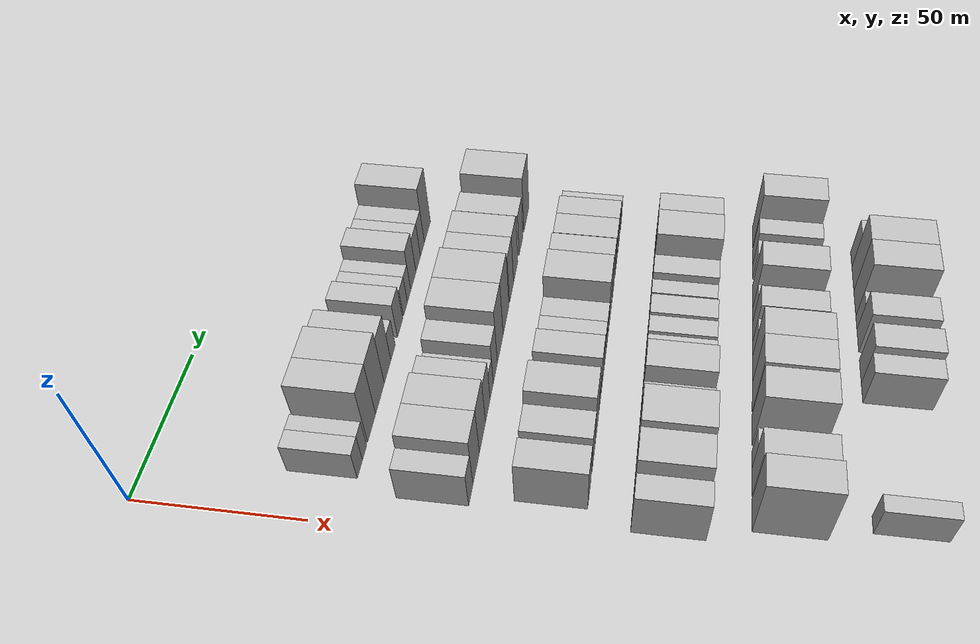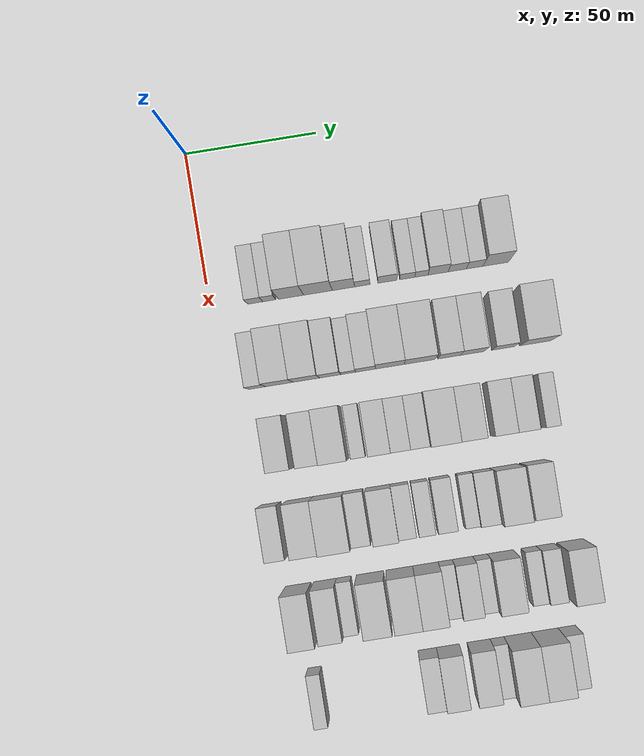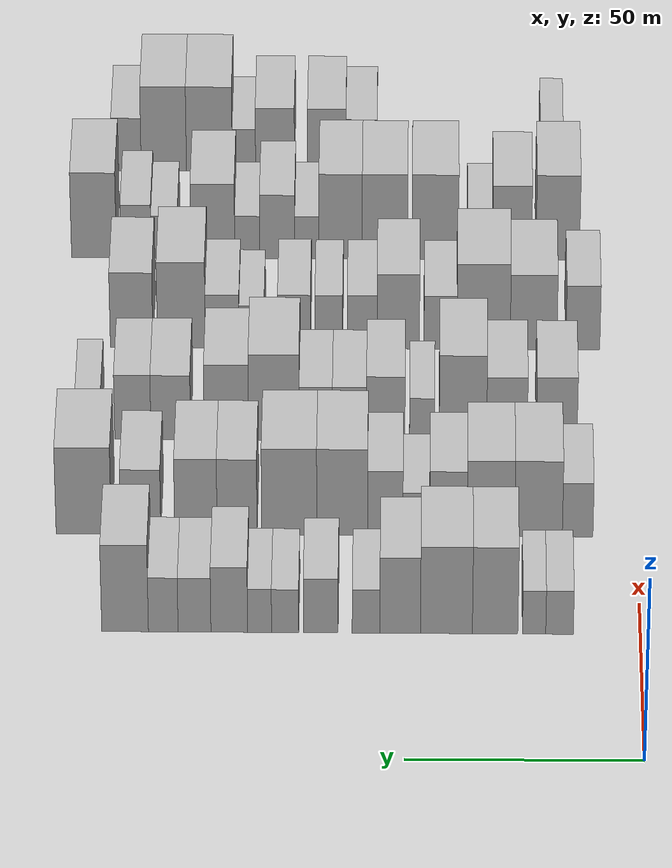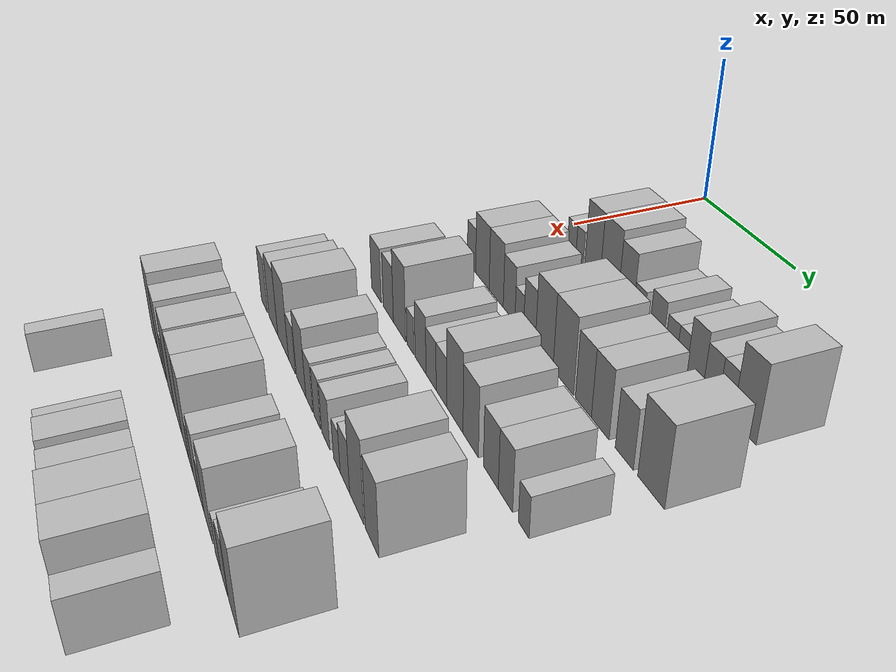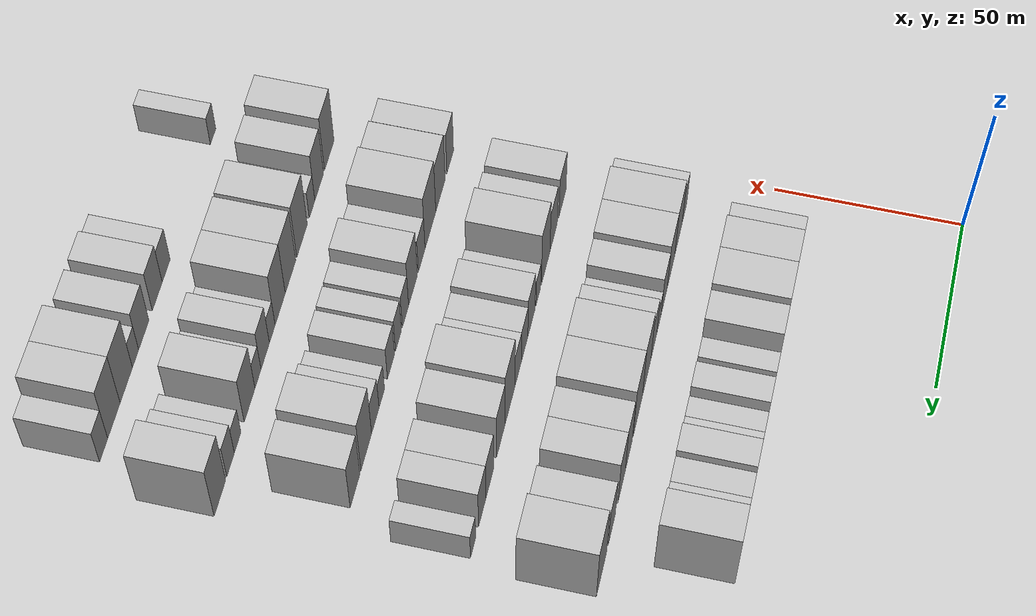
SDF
<sdf version="1.6">
 <world name="default">
  <model name="building_57">
   <static>1</static>
   <pose>50.0000 17.2254 0 0.000000 0.000000 0.000000</pose>
   <link name="link">
    <pose>0 0 6.00 0 0 0</pose>
    <collision name="collision"><geometry><box><size>20.0000 5.8542 12.0000</size></box></geometry></collision>
    <visual name="visual">
     <cast_shadows>0</cast_shadows>
     <geometry><box><size>20.0000 5.8542 12.0000</size></box></geometry>
     <material>
      <script>
       <uri>model://HANNAS_wall/materials/scripts</uri>
       <uri>model://HANNAS_wall/materials/textures</uri>
       <name>vrc/HANNAS_wall</name>
      </script>
     </material>
    </visual>
   </link>
  </model>
  <model name="building_58">
   <static>1</static>
   <pose>50.0000 22.6126 0 0.000000 0.000000 0.000000</pose>
   <link name="link">
    <pose>0 0 6.00 0 0 0</pose>
    <collision name="collision"><geometry><box><size>20.0000 4.9204 12.0000</size></box></geometry></collision>
    <visual name="visual">
     <cast_shadows>0</cast_shadows>
     <geometry><box><size>20.0000 4.9204 12.0000</size></box></geometry>
     <material>
      <script>
       <uri>model://HANNAS_wall/materials/scripts</uri>
       <uri>model://HANNAS_wall/materials/textures</uri>
       <name>vrc/HANNAS_wall</name>
      </script>
     </material>
    </visual>
   </link>
  </model>
  <model name="building_59">
   <static>1</static>
   <pose>50.0000 30.8937 0 0.000000 0.000000 0.000000</pose>
   <link name="link">
    <pose>0 0 12.00 0 0 0</pose>
    <collision name="collision"><geometry><box><size>20.0000 9.6418 24.0000</size></box></geometry></collision>
    <visual name="visual">
     <cast_shadows>0</cast_shadows>
     <geometry><box><size>20.0000 9.6418 24.0000</size></box></geometry>
     <material>
      <script>
       <uri>model://HANNAS_wall/materials/scripts</uri>
       <uri>model://HANNAS_wall/materials/textures</uri>
       <name>vrc/HANNAS_wall</name>
      </script>
     </material>
    </visual>
   </link>
  </model>
  <model name="building_60">
   <static>1</static>
   <pose>50.0000 41.2207 0 0.000000 0.000000 0.000000</pose>
   <link name="link">
    <pose>0 0 12.00 0 0 0</pose>
    <collision name="collision"><geometry><box><size>20.0000 11.0123 24.0000</size></box></geometry></collision>
    <visual name="visual">
     <cast_shadows>0</cast_shadows>
     <geometry><box><size>20.0000 11.0123 24.0000</size></box></geometry>
     <material>
      <script>
       <uri>model://HANNAS_wall/materials/scripts</uri>
       <uri>model://HANNAS_wall/materials/textures</uri>
       <name>vrc/HANNAS_wall</name>
      </script>
     </material>
    </visual>
   </link>
  </model>
  <model name="building_61">
   <static>1</static>
   <pose>50.0000 51.0262 0 0.000000 0.000000 0.000000</pose>
   <link name="link">
    <pose>0 0 10.50 0 0 0</pose>
    <collision name="collision"><geometry><box><size>20.0000 8.5987 21.0000</size></box></geometry></collision>
    <visual name="visual">
     <cast_shadows>0</cast_shadows>
     <geometry><box><size>20.0000 8.5987 21.0000</size></box></geometry>
     <material>
      <script>
       <uri>model://HANNAS_wall/materials/scripts</uri>
       <uri>model://HANNAS_wall/materials/textures</uri>
       <name>vrc/HANNAS_wall</name>
      </script>
     </material>
    </visual>
   </link>
  </model>
  <model name="building_62">
   <static>1</static>
   <pose>50.0000 58.2653 0 0.000000 0.000000 0.000000</pose>
   <link name="link">
    <pose>0 0 6.00 0 0 0</pose>
    <collision name="collision"><geometry><box><size>20.0000 5.8794 12.0000</size></box></geometry></collision>
    <visual name="visual">
     <cast_shadows>0</cast_shadows>
     <geometry><box><size>20.0000 5.8794 12.0000</size></box></geometry>
     <material>
      <script>
       <uri>model://HANNAS_wall/materials/scripts</uri>
       <uri>model://HANNAS_wall/materials/textures</uri>
       <name>vrc/HANNAS_wall</name>
      </script>
     </material>
    </visual>
   </link>
  </model>
  <model name="building_63">
   <static>1</static>
   <pose>50.0000 67.8805 0 0.000000 0.000000 0.000000</pose>
   <link name="link">
    <pose>0 0 7.50 0 0 0</pose>
    <collision name="collision"><geometry><box><size>20.0000 7.3510 15.0000</size></box></geometry></collision>
    <visual name="visual">
     <cast_shadows>0</cast_shadows>
     <geometry><box><size>20.0000 7.3510 15.0000</size></box></geometry>
     <material>
      <script>
       <uri>model://HANNAS_wall/materials/scripts</uri>
       <uri>model://HANNAS_wall/materials/textures</uri>
       <name>vrc/HANNAS_wall</name>
      </script>
     </material>
    </visual>
   </link>
  </model>
  <model name="building_64">
   <static>1</static>
   <pose>50.0000 75.4404 0 0.000000 0.000000 0.000000</pose>
   <link name="link">
    <pose>0 0 6.00 0 0 0</pose>
    <collision name="collision"><geometry><box><size>20.0000 5.7688 12.0000</size></box></geometry></collision>
    <visual name="visual">
     <cast_shadows>0</cast_shadows>
     <geometry><box><size>20.0000 5.7688 12.0000</size></box></geometry>
     <material>
      <script>
       <uri>model://HANNAS_wall/materials/scripts</uri>
       <uri>model://HANNAS_wall/materials/textures</uri>
       <name>vrc/HANNAS_wall</name>
      </script>
     </material>
    </visual>
   </link>
  </model>
  <model name="building_65">
   <static>1</static>
   <pose>50.0000 80.8665 0 0.000000 0.000000 0.000000</pose>
   <link name="link">
    <pose>0 0 6.00 0 0 0</pose>
    <collision name="collision"><geometry><box><size>20.0000 5.0833 12.0000</size></box></geometry></collision>
    <visual name="visual">
     <cast_shadows>0</cast_shadows>
     <geometry><box><size>20.0000 5.0833 12.0000</size></box></geometry>
     <material>
      <script>
       <uri>model://HANNAS_wall/materials/scripts</uri>
       <uri>model://HANNAS_wall/materials/textures</uri>
       <name>vrc/HANNAS_wall</name>
      </script>
     </material>
    </visual>
   </link>
  </model>
  <model name="building_66">
   <static>1</static>
   <pose>50.0000 87.2986 0 0.000000 0.000000 0.000000</pose>
   <link name="link">
    <pose>0 0 9.00 0 0 0</pose>
    <collision name="collision"><geometry><box><size>20.0000 7.7810 18.0000</size></box></geometry></collision>
    <visual name="visual">
     <cast_shadows>0</cast_shadows>
     <geometry><box><size>20.0000 7.7810 18.0000</size></box></geometry>
     <material>
      <script>
       <uri>model://HANNAS_wall/materials/scripts</uri>
       <uri>model://HANNAS_wall/materials/textures</uri>
       <name>vrc/HANNAS_wall</name>
      </script>
     </material>
    </visual>
   </link>
  </model>
  <model name="building_67">
   <static>1</static>
   <pose>50.0000 94.6754 0 0.000000 0.000000 0.000000</pose>
   <link name="link">
    <pose>0 0 7.50 0 0 0</pose>
    <collision name="collision"><geometry><box><size>20.0000 6.9725 15.0000</size></box></geometry></collision>
    <visual name="visual">
     <cast_shadows>0</cast_shadows>
     <geometry><box><size>20.0000 6.9725 15.0000</size></box></geometry>
     <material>
      <script>
       <uri>model://HANNAS_wall/materials/scripts</uri>
       <uri>model://HANNAS_wall/materials/textures</uri>
       <name>vrc/HANNAS_wall</name>
      </script>
     </material>
    </visual>
   </link>
  </model>
  <model name="building_68">
   <static>1</static>
   <pose>50.0000 101.3077 0 0.000000 0.000000 0.000000</pose>
   <link name="link">
    <pose>0 0 7.50 0 0 0</pose>
    <collision name="collision"><geometry><box><size>20.0000 6.2923 15.0000</size></box></geometry></collision>
    <visual name="visual">
     <cast_shadows>0</cast_shadows>
     <geometry><box><size>20.0000 6.2923 15.0000</size></box></geometry>
     <material>
      <script>
       <uri>model://HANNAS_wall/materials/scripts</uri>
       <uri>model://HANNAS_wall/materials/textures</uri>
       <name>vrc/HANNAS_wall</name>
      </script>
     </material>
    </visual>
   </link>
  </model>
  <model name="building_69">
   <static>1</static>
   <pose>50.0000 109.4048 0 0.000000 0.000000 0.000000</pose>
   <link name="link">
    <pose>0 0 12.00 0 0 0</pose>
    <collision name="collision"><geometry><box><size>20.0000 9.9018 24.0000</size></box></geometry></collision>
    <visual name="visual">
     <cast_shadows>0</cast_shadows>
     <geometry><box><size>20.0000 9.9018 24.0000</size></box></geometry>
     <material>
      <script>
       <uri>model://HANNAS_wall/materials/scripts</uri>
       <uri>model://HANNAS_wall/materials/textures</uri>
       <name>vrc/HANNAS_wall</name>
      </script>
     </material>
    </visual>
   </link>
  </model>
  <model name="building_177">
   <static>1</static>
   <pose>82.0000 12.9721 0 0.000000 0.000000 0.000000</pose>
   <link name="link">
    <pose>0 0 7.50 0 0 0</pose>
    <collision name="collision"><geometry><box><size>20.0000 6.5900 15.0000</size></box></geometry></collision>
    <visual name="visual">
     <cast_shadows>0</cast_shadows>
     <geometry><box><size>20.0000 6.5900 15.0000</size></box></geometry>
     <material>
      <script>
       <uri>model://HANNAS_wall/materials/scripts</uri>
       <uri>model://HANNAS_wall/materials/textures</uri>
       <name>vrc/HANNAS_wall</name>
      </script>
     </material>
    </visual>
   </link>
  </model>
  <model name="building_178">
   <static>1</static>
   <pose>82.0000 21.4082 0 0.000000 0.000000 0.000000</pose>
   <link name="link">
    <pose>0 0 10.50 0 0 0</pose>
    <collision name="collision"><geometry><box><size>20.0000 10.2821 21.0000</size></box></geometry></collision>
    <visual name="visual">
     <cast_shadows>0</cast_shadows>
     <geometry><box><size>20.0000 10.2821 21.0000</size></box></geometry>
     <material>
      <script>
       <uri>model://HANNAS_wall/materials/scripts</uri>
       <uri>model://HANNAS_wall/materials/textures</uri>
       <name>vrc/HANNAS_wall</name>
      </script>
     </material>
    </visual>
   </link>
  </model>
  <model name="building_179">
   <static>1</static>
   <pose>82.0000 31.6542 0 0.000000 0.000000 0.000000</pose>
   <link name="link">
    <pose>0 0 10.50 0 0 0</pose>
    <collision name="collision"><geometry><box><size>20.0000 10.2100 21.0000</size></box></geometry></collision>
    <visual name="visual">
     <cast_shadows>0</cast_shadows>
     <geometry><box><size>20.0000 10.2100 21.0000</size></box></geometry>
     <material>
      <script>
       <uri>model://HANNAS_wall/materials/scripts</uri>
       <uri>model://HANNAS_wall/materials/textures</uri>
       <name>vrc/HANNAS_wall</name>
      </script>
     </material>
    </visual>
   </link>
  </model>
  <model name="building_180">
   <static>1</static>
   <pose>82.0000 40.8009 0 0.000000 0.000000 0.000000</pose>
   <link name="link">
    <pose>0 0 9.00 0 0 0</pose>
    <collision name="collision"><geometry><box><size>20.0000 8.0833 18.0000</size></box></geometry></collision>
    <visual name="visual">
     <cast_shadows>0</cast_shadows>
     <geometry><box><size>20.0000 8.0833 18.0000</size></box></geometry>
     <material>
      <script>
       <uri>model://HANNAS_wall/materials/scripts</uri>
       <uri>model://HANNAS_wall/materials/textures</uri>
       <name>vrc/HANNAS_wall</name>
      </script>
     </material>
    </visual>
   </link>
  </model>
  <model name="building_181">
   <static>1</static>
   <pose>82.0000 47.7128 0 0.000000 0.000000 0.000000</pose>
   <link name="link">
    <pose>0 0 6.00 0 0 0</pose>
    <collision name="collision"><geometry><box><size>20.0000 5.7404 12.0000</size></box></geometry></collision>
    <visual name="visual">
     <cast_shadows>0</cast_shadows>
     <geometry><box><size>20.0000 5.7404 12.0000</size></box></geometry>
     <material>
      <script>
       <uri>model://HANNAS_wall/materials/scripts</uri>
       <uri>model://HANNAS_wall/materials/textures</uri>
       <name>vrc/HANNAS_wall</name>
      </script>
     </material>
    </visual>
   </link>
  </model>
  <model name="building_182">
   <static>1</static>
   <pose>82.0000 54.3850 0 0.000000 0.000000 0.000000</pose>
   <link name="link">
    <pose>0 0 9.00 0 0 0</pose>
    <collision name="collision"><geometry><box><size>20.0000 7.6042 18.0000</size></box></geometry></collision>
    <visual name="visual">
     <cast_shadows>0</cast_shadows>
     <geometry><box><size>20.0000 7.6042 18.0000</size></box></geometry>
     <material>
      <script>
       <uri>model://HANNAS_wall/materials/scripts</uri>
       <uri>model://HANNAS_wall/materials/textures</uri>
       <name>vrc/HANNAS_wall</name>
      </script>
     </material>
    </visual>
   </link>
  </model>
  <model name="building_183">
   <static>1</static>
   <pose>82.0000 63.6549 0 0.000000 0.000000 0.000000</pose>
   <link name="link">
    <pose>0 0 12.00 0 0 0</pose>
    <collision name="collision"><geometry><box><size>20.0000 10.9356 24.0000</size></box></geometry></collision>
    <visual name="visual">
     <cast_shadows>0</cast_shadows>
     <geometry><box><size>20.0000 10.9356 24.0000</size></box></geometry>
     <material>
      <script>
       <uri>model://HANNAS_wall/materials/scripts</uri>
       <uri>model://HANNAS_wall/materials/textures</uri>
       <name>vrc/HANNAS_wall</name>
      </script>
     </material>
    </visual>
   </link>
  </model>
  <model name="building_184">
   <static>1</static>
   <pose>82.0000 75.0477 0 0.000000 0.000000 0.000000</pose>
   <link name="link">
    <pose>0 0 12.00 0 0 0</pose>
    <collision name="collision"><geometry><box><size>20.0000 11.8500 24.0000</size></box></geometry></collision>
    <visual name="visual">
     <cast_shadows>0</cast_shadows>
     <geometry><box><size>20.0000 11.8500 24.0000</size></box></geometry>
     <material>
      <script>
       <uri>model://HANNAS_wall/materials/scripts</uri>
       <uri>model://HANNAS_wall/materials/textures</uri>
       <name>vrc/HANNAS_wall</name>
      </script>
     </material>
    </visual>
   </link>
  </model>
  <model name="building_185">
   <static>1</static>
   <pose>82.0000 86.2734 0 0.000000 0.000000 0.000000</pose>
   <link name="link">
    <pose>0 0 10.50 0 0 0</pose>
    <collision name="collision"><geometry><box><size>20.0000 8.6014 21.0000</size></box></geometry></collision>
    <visual name="visual">
     <cast_shadows>0</cast_shadows>
     <geometry><box><size>20.0000 8.6014 21.0000</size></box></geometry>
     <material>
      <script>
       <uri>model://HANNAS_wall/materials/scripts</uri>
       <uri>model://HANNAS_wall/materials/textures</uri>
       <name>vrc/HANNAS_wall</name>
      </script>
     </material>
    </visual>
   </link>
  </model>
  <model name="building_186">
   <static>1</static>
   <pose>82.0000 95.1362 0 0.000000 0.000000 0.000000</pose>
   <link name="link">
    <pose>0 0 10.50 0 0 0</pose>
    <collision name="collision"><geometry><box><size>20.0000 9.1242 21.0000</size></box></geometry></collision>
    <visual name="visual">
     <cast_shadows>0</cast_shadows>
     <geometry><box><size>20.0000 9.1242 21.0000</size></box></geometry>
     <material>
      <script>
       <uri>model://HANNAS_wall/materials/scripts</uri>
       <uri>model://HANNAS_wall/materials/textures</uri>
       <name>vrc/HANNAS_wall</name>
      </script>
     </material>
    </visual>
   </link>
  </model>
  <model name="building_187">
   <static>1</static>
   <pose>82.0000 107.0266 0 0.000000 0.000000 0.000000</pose>
   <link name="link">
    <pose>0 0 9.00 0 0 0</pose>
    <collision name="collision"><geometry><box><size>20.0000 8.6567 18.0000</size></box></geometry></collision>
    <visual name="visual">
     <cast_shadows>0</cast_shadows>
     <geometry><box><size>20.0000 8.6567 18.0000</size></box></geometry>
     <material>
      <script>
       <uri>model://HANNAS_wall/materials/scripts</uri>
       <uri>model://HANNAS_wall/materials/textures</uri>
       <name>vrc/HANNAS_wall</name>
      </script>
     </material>
    </visual>
   </link>
  </model>
  <model name="building_188">
   <static>1</static>
   <pose>82.0000 119.3006 0 0.000000 0.000000 0.000000</pose>
   <link name="link">
    <pose>0 0 12.00 0 0 0</pose>
    <collision name="collision"><geometry><box><size>20.0000 11.8912 24.0000</size></box></geometry></collision>
    <visual name="visual">
     <cast_shadows>0</cast_shadows>
     <geometry><box><size>20.0000 11.8912 24.0000</size></box></geometry>
     <material>
      <script>
       <uri>model://HANNAS_wall/materials/scripts</uri>
       <uri>model://HANNAS_wall/materials/textures</uri>
       <name>vrc/HANNAS_wall</name>
      </script>
     </material>
    </visual>
   </link>
  </model>
  <model name="building_296">
   <static>1</static>
   <pose>114.0000 17.1242 0 0.000000 0.000000 0.000000</pose>
   <link name="link">
    <pose>0 0 9.00 0 0 0</pose>
    <collision name="collision"><geometry><box><size>20.0000 8.8848 18.0000</size></box></geometry></collision>
    <visual name="visual">
     <cast_shadows>0</cast_shadows>
     <geometry><box><size>20.0000 8.8848 18.0000</size></box></geometry>
     <material>
      <script>
       <uri>model://HANNAS_wall/materials/scripts</uri>
       <uri>model://HANNAS_wall/materials/textures</uri>
       <name>vrc/HANNAS_wall</name>
      </script>
     </material>
    </visual>
   </link>
  </model>
  <model name="building_297">
   <static>1</static>
   <pose>114.0000 28.0009 0 0.000000 0.000000 0.000000</pose>
   <link name="link">
    <pose>0 0 9.00 0 0 0</pose>
    <collision name="collision"><geometry><box><size>20.0000 8.8687 18.0000</size></box></geometry></collision>
    <visual name="visual">
     <cast_shadows>0</cast_shadows>
     <geometry><box><size>20.0000 8.8687 18.0000</size></box></geometry>
     <material>
      <script>
       <uri>model://HANNAS_wall/materials/scripts</uri>
       <uri>model://HANNAS_wall/materials/textures</uri>
       <name>vrc/HANNAS_wall</name>
      </script>
     </material>
    </visual>
   </link>
  </model>
  <model name="building_298">
   <static>1</static>
   <pose>114.0000 37.6078 0 0.000000 0.000000 0.000000</pose>
   <link name="link">
    <pose>0 0 12.00 0 0 0</pose>
    <collision name="collision"><geometry><box><size>20.0000 10.3450 24.0000</size></box></geometry></collision>
    <visual name="visual">
     <cast_shadows>0</cast_shadows>
     <geometry><box><size>20.0000 10.3450 24.0000</size></box></geometry>
     <material>
      <script>
       <uri>model://HANNAS_wall/materials/scripts</uri>
       <uri>model://HANNAS_wall/materials/textures</uri>
       <name>vrc/HANNAS_wall</name>
      </script>
     </material>
    </visual>
   </link>
  </model>
  <model name="building_299">
   <static>1</static>
   <pose>114.0000 46.5231 0 0.000000 0.000000 0.000000</pose>
   <link name="link">
    <pose>0 0 6.00 0 0 0</pose>
    <collision name="collision"><geometry><box><size>20.0000 5.4856 12.0000</size></box></geometry></collision>
    <visual name="visual">
     <cast_shadows>0</cast_shadows>
     <geometry><box><size>20.0000 5.4856 12.0000</size></box></geometry>
     <material>
      <script>
       <uri>model://HANNAS_wall/materials/scripts</uri>
       <uri>model://HANNAS_wall/materials/textures</uri>
       <name>vrc/HANNAS_wall</name>
      </script>
     </material>
    </visual>
   </link>
  </model>
  <model name="building_300">
   <static>1</static>
   <pose>114.0000 54.4677 0 0.000000 0.000000 0.000000</pose>
   <link name="link">
    <pose>0 0 9.00 0 0 0</pose>
    <collision name="collision"><geometry><box><size>20.0000 8.4035 18.0000</size></box></geometry></collision>
    <visual name="visual">
     <cast_shadows>0</cast_shadows>
     <geometry><box><size>20.0000 8.4035 18.0000</size></box></geometry>
     <material>
      <script>
       <uri>model://HANNAS_wall/materials/scripts</uri>
       <uri>model://HANNAS_wall/materials/textures</uri>
       <name>vrc/HANNAS_wall</name>
      </script>
     </material>
    </visual>
   </link>
  </model>
  <model name="building_301">
   <static>1</static>
   <pose>114.0000 62.3859 0 0.000000 0.000000 0.000000</pose>
   <link name="link">
    <pose>0 0 7.50 0 0 0</pose>
    <collision name="collision"><geometry><box><size>20.0000 7.4329 15.0000</size></box></geometry></collision>
    <visual name="visual">
     <cast_shadows>0</cast_shadows>
     <geometry><box><size>20.0000 7.4329 15.0000</size></box></geometry>
     <material>
      <script>
       <uri>model://HANNAS_wall/materials/scripts</uri>
       <uri>model://HANNAS_wall/materials/textures</uri>
       <name>vrc/HANNAS_wall</name>
      </script>
     </material>
    </visual>
   </link>
  </model>
  <model name="building_302">
   <static>1</static>
   <pose>114.0000 69.7249 0 0.000000 0.000000 0.000000</pose>
   <link name="link">
    <pose>0 0 7.50 0 0 0</pose>
    <collision name="collision"><geometry><box><size>20.0000 7.2451 15.0000</size></box></geometry></collision>
    <visual name="visual">
     <cast_shadows>0</cast_shadows>
     <geometry><box><size>20.0000 7.2451 15.0000</size></box></geometry>
     <material>
      <script>
       <uri>model://HANNAS_wall/materials/scripts</uri>
       <uri>model://HANNAS_wall/materials/textures</uri>
       <name>vrc/HANNAS_wall</name>
      </script>
     </material>
    </visual>
   </link>
  </model>
  <model name="building_303">
   <static>1</static>
   <pose>114.0000 78.8644 0 0.000000 0.000000 0.000000</pose>
   <link name="link">
    <pose>0 0 12.00 0 0 0</pose>
    <collision name="collision"><geometry><box><size>20.0000 11.0340 24.0000</size></box></geometry></collision>
    <visual name="visual">
     <cast_shadows>0</cast_shadows>
     <geometry><box><size>20.0000 11.0340 24.0000</size></box></geometry>
     <material>
      <script>
       <uri>model://HANNAS_wall/materials/scripts</uri>
       <uri>model://HANNAS_wall/materials/textures</uri>
       <name>vrc/HANNAS_wall</name>
      </script>
     </material>
    </visual>
   </link>
  </model>
  <model name="building_304">
   <static>1</static>
   <pose>114.0000 89.2275 0 0.000000 0.000000 0.000000</pose>
   <link name="link">
    <pose>0 0 10.50 0 0 0</pose>
    <collision name="collision"><geometry><box><size>20.0000 9.6922 21.0000</size></box></geometry></collision>
    <visual name="visual">
     <cast_shadows>0</cast_shadows>
     <geometry><box><size>20.0000 9.6922 21.0000</size></box></geometry>
     <material>
      <script>
       <uri>model://HANNAS_wall/materials/scripts</uri>
       <uri>model://HANNAS_wall/materials/textures</uri>
       <name>vrc/HANNAS_wall</name>
      </script>
     </material>
    </visual>
   </link>
  </model>
  <model name="building_305">
   <static>1</static>
   <pose>114.0000 101.4011 0 0.000000 0.000000 0.000000</pose>
   <link name="link">
    <pose>0 0 9.00 0 0 0</pose>
    <collision name="collision"><geometry><box><size>20.0000 8.6550 18.0000</size></box></geometry></collision>
    <visual name="visual">
     <cast_shadows>0</cast_shadows>
     <geometry><box><size>20.0000 8.6550 18.0000</size></box></geometry>
     <material>
      <script>
       <uri>model://HANNAS_wall/materials/scripts</uri>
       <uri>model://HANNAS_wall/materials/textures</uri>
       <name>vrc/HANNAS_wall</name>
      </script>
     </material>
    </visual>
   </link>
  </model>
  <model name="building_306">
   <static>1</static>
   <pose>114.0000 109.6871 0 0.000000 0.000000 0.000000</pose>
   <link name="link">
    <pose>0 0 9.00 0 0 0</pose>
    <collision name="collision"><geometry><box><size>20.0000 7.9170 18.0000</size></box></geometry></collision>
    <visual name="visual">
     <cast_shadows>0</cast_shadows>
     <geometry><box><size>20.0000 7.9170 18.0000</size></box></geometry>
     <material>
      <script>
       <uri>model://HANNAS_wall/materials/scripts</uri>
       <uri>model://HANNAS_wall/materials/textures</uri>
       <name>vrc/HANNAS_wall</name>
      </script>
     </material>
    </visual>
   </link>
  </model>
  <model name="building_307">
   <static>1</static>
   <pose>114.0000 119.4370 0 0.000000 0.000000 0.000000</pose>
   <link name="link">
    <pose>0 0 6.00 0 0 0</pose>
    <collision name="collision"><geometry><box><size>20.0000 5.5829 12.0000</size></box></geometry></collision>
    <visual name="visual">
     <cast_shadows>0</cast_shadows>
     <geometry><box><size>20.0000 5.5829 12.0000</size></box></geometry>
     <material>
      <script>
       <uri>model://HANNAS_wall/materials/scripts</uri>
       <uri>model://HANNAS_wall/materials/textures</uri>
       <name>vrc/HANNAS_wall</name>
      </script>
     </material>
    </visual>
   </link>
  </model>
  <model name="building_410">
   <static>1</static>
   <pose>146.0000 10.9861 0 0.000000 0.000000 0.000000</pose>
   <link name="link">
    <pose>0 0 9.00 0 0 0</pose>
    <collision name="collision"><geometry><box><size>20.0000 7.5147 18.0000</size></box></geometry></collision>
    <visual name="visual">
     <cast_shadows>0</cast_shadows>
     <geometry><box><size>20.0000 7.5147 18.0000</size></box></geometry>
     <material>
      <script>
       <uri>model://HANNAS_wall/materials/scripts</uri>
       <uri>model://HANNAS_wall/materials/textures</uri>
       <name>vrc/HANNAS_wall</name>
      </script>
     </material>
    </visual>
   </link>
  </model>
  <model name="building_411">
   <static>1</static>
   <pose>146.0000 21.9145 0 0.000000 0.000000 0.000000</pose>
   <link name="link">
    <pose>0 0 10.50 0 0 0</pose>
    <collision name="collision"><geometry><box><size>20.0000 10.3420 21.0000</size></box></geometry></collision>
    <visual name="visual">
     <cast_shadows>0</cast_shadows>
     <geometry><box><size>20.0000 10.3420 21.0000</size></box></geometry>
     <material>
      <script>
       <uri>model://HANNAS_wall/materials/scripts</uri>
       <uri>model://HANNAS_wall/materials/textures</uri>
       <name>vrc/HANNAS_wall</name>
      </script>
     </material>
    </visual>
   </link>
  </model>
  <model name="building_412">
   <static>1</static>
   <pose>146.0000 32.9889 0 0.000000 0.000000 0.000000</pose>
   <link name="link">
    <pose>0 0 12.00 0 0 0</pose>
    <collision name="collision"><geometry><box><size>20.0000 11.8070 24.0000</size></box></geometry></collision>
    <visual name="visual">
     <cast_shadows>0</cast_shadows>
     <geometry><box><size>20.0000 11.8070 24.0000</size></box></geometry>
     <material>
      <script>
       <uri>model://HANNAS_wall/materials/scripts</uri>
       <uri>model://HANNAS_wall/materials/textures</uri>
       <name>vrc/HANNAS_wall</name>
      </script>
     </material>
    </visual>
   </link>
  </model>
  <model name="building_413">
   <static>1</static>
   <pose>146.0000 42.5324 0 0.000000 0.000000 0.000000</pose>
   <link name="link">
    <pose>0 0 7.50 0 0 0</pose>
    <collision name="collision"><geometry><box><size>20.0000 7.2800 15.0000</size></box></geometry></collision>
    <visual name="visual">
     <cast_shadows>0</cast_shadows>
     <geometry><box><size>20.0000 7.2800 15.0000</size></box></geometry>
     <material>
      <script>
       <uri>model://HANNAS_wall/materials/scripts</uri>
       <uri>model://HANNAS_wall/materials/textures</uri>
       <name>vrc/HANNAS_wall</name>
      </script>
     </material>
    </visual>
   </link>
  </model>
  <model name="building_414">
   <static>1</static>
   <pose>146.0000 51.8691 0 0.000000 0.000000 0.000000</pose>
   <link name="link">
    <pose>0 0 10.50 0 0 0</pose>
    <collision name="collision"><geometry><box><size>20.0000 9.3932 21.0000</size></box></geometry></collision>
    <visual name="visual">
     <cast_shadows>0</cast_shadows>
     <geometry><box><size>20.0000 9.3932 21.0000</size></box></geometry>
     <material>
      <script>
       <uri>model://HANNAS_wall/materials/scripts</uri>
       <uri>model://HANNAS_wall/materials/textures</uri>
       <name>vrc/HANNAS_wall</name>
      </script>
     </material>
    </visual>
   </link>
  </model>
  <model name="building_415">
   <static>1</static>
   <pose>146.0000 59.8689 0 0.000000 0.000000 0.000000</pose>
   <link name="link">
    <pose>0 0 7.50 0 0 0</pose>
    <collision name="collision"><geometry><box><size>20.0000 6.6065 15.0000</size></box></geometry></collision>
    <visual name="visual">
     <cast_shadows>0</cast_shadows>
     <geometry><box><size>20.0000 6.6065 15.0000</size></box></geometry>
     <material>
      <script>
       <uri>model://HANNAS_wall/materials/scripts</uri>
       <uri>model://HANNAS_wall/materials/textures</uri>
       <name>vrc/HANNAS_wall</name>
      </script>
     </material>
    </visual>
   </link>
  </model>
  <model name="building_416">
   <static>1</static>
   <pose>146.0000 67.2370 0 0.000000 0.000000 0.000000</pose>
   <link name="link">
    <pose>0 0 7.50 0 0 0</pose>
    <collision name="collision"><geometry><box><size>20.0000 6.1297 15.0000</size></box></geometry></collision>
    <visual name="visual">
     <cast_shadows>0</cast_shadows>
     <geometry><box><size>20.0000 6.1297 15.0000</size></box></geometry>
     <material>
      <script>
       <uri>model://HANNAS_wall/materials/scripts</uri>
       <uri>model://HANNAS_wall/materials/textures</uri>
       <name>vrc/HANNAS_wall</name>
      </script>
     </material>
    </visual>
   </link>
  </model>
  <model name="building_417">
   <static>1</static>
   <pose>146.0000 74.9322 0 0.000000 0.000000 0.000000</pose>
   <link name="link">
    <pose>0 0 7.50 0 0 0</pose>
    <collision name="collision"><geometry><box><size>20.0000 7.2607 15.0000</size></box></geometry></collision>
    <visual name="visual">
     <cast_shadows>0</cast_shadows>
     <geometry><box><size>20.0000 7.2607 15.0000</size></box></geometry>
     <material>
      <script>
       <uri>model://HANNAS_wall/materials/scripts</uri>
       <uri>model://HANNAS_wall/materials/textures</uri>
       <name>vrc/HANNAS_wall</name>
      </script>
     </material>
    </visual>
   </link>
  </model>
  <model name="building_418">
   <static>1</static>
   <pose>146.0000 84.3282 0 0.000000 0.000000 0.000000</pose>
   <link name="link">
    <pose>0 0 6.00 0 0 0</pose>
    <collision name="collision"><geometry><box><size>20.0000 5.5313 12.0000</size></box></geometry></collision>
    <visual name="visual">
     <cast_shadows>0</cast_shadows>
     <geometry><box><size>20.0000 5.5313 12.0000</size></box></geometry>
     <material>
      <script>
       <uri>model://HANNAS_wall/materials/scripts</uri>
       <uri>model://HANNAS_wall/materials/textures</uri>
       <name>vrc/HANNAS_wall</name>
      </script>
     </material>
    </visual>
   </link>
  </model>
  <model name="building_419">
   <static>1</static>
   <pose>146.0000 90.8378 0 0.000000 0.000000 0.000000</pose>
   <link name="link">
    <pose>0 0 7.50 0 0 0</pose>
    <collision name="collision"><geometry><box><size>20.0000 7.4879 15.0000</size></box></geometry></collision>
    <visual name="visual">
     <cast_shadows>0</cast_shadows>
     <geometry><box><size>20.0000 7.4879 15.0000</size></box></geometry>
     <material>
      <script>
       <uri>model://HANNAS_wall/materials/scripts</uri>
       <uri>model://HANNAS_wall/materials/textures</uri>
       <name>vrc/HANNAS_wall</name>
      </script>
     </material>
    </visual>
   </link>
  </model>
  <model name="building_420">
   <static>1</static>
   <pose>146.0000 99.8931 0 0.000000 0.000000 0.000000</pose>
   <link name="link">
    <pose>0 0 12.00 0 0 0</pose>
    <collision name="collision"><geometry><box><size>20.0000 10.6228 24.0000</size></box></geometry></collision>
    <visual name="visual">
     <cast_shadows>0</cast_shadows>
     <geometry><box><size>20.0000 10.6228 24.0000</size></box></geometry>
     <material>
      <script>
       <uri>model://HANNAS_wall/materials/scripts</uri>
       <uri>model://HANNAS_wall/materials/textures</uri>
       <name>vrc/HANNAS_wall</name>
      </script>
     </material>
    </visual>
   </link>
  </model>
  <model name="building_421">
   <static>1</static>
   <pose>146.0000 110.9273 0 0.000000 0.000000 0.000000</pose>
   <link name="link">
    <pose>0 0 10.50 0 0 0</pose>
    <collision name="collision"><geometry><box><size>20.0000 9.4457 21.0000</size></box></geometry></collision>
    <visual name="visual">
     <cast_shadows>0</cast_shadows>
     <geometry><box><size>20.0000 9.4457 21.0000</size></box></geometry>
     <material>
      <script>
       <uri>model://HANNAS_wall/materials/scripts</uri>
       <uri>model://HANNAS_wall/materials/textures</uri>
       <name>vrc/HANNAS_wall</name>
      </script>
     </material>
    </visual>
   </link>
  </model>
  <model name="building_527">
   <static>1</static>
   <pose>178.0000 16.2027 0 0.000000 0.000000 0.000000</pose>
   <link name="link">
    <pose>0 0 12.00 0 0 0</pose>
    <collision name="collision"><geometry><box><size>20.0000 9.7728 24.0000</size></box></geometry></collision>
    <visual name="visual">
     <cast_shadows>0</cast_shadows>
     <geometry><box><size>20.0000 9.7728 24.0000</size></box></geometry>
     <material>
      <script>
       <uri>model://HANNAS_wall/materials/scripts</uri>
       <uri>model://HANNAS_wall/materials/textures</uri>
       <name>vrc/HANNAS_wall</name>
      </script>
     </material>
    </visual>
   </link>
  </model>
  <model name="building_528">
   <static>1</static>
   <pose>178.0000 26.4767 0 0.000000 0.000000 0.000000</pose>
   <link name="link">
    <pose>0 0 10.50 0 0 0</pose>
    <collision name="collision"><geometry><box><size>20.0000 8.7752 21.0000</size></box></geometry></collision>
    <visual name="visual">
     <cast_shadows>0</cast_shadows>
     <geometry><box><size>20.0000 8.7752 21.0000</size></box></geometry>
     <material>
      <script>
       <uri>model://HANNAS_wall/materials/scripts</uri>
       <uri>model://HANNAS_wall/materials/textures</uri>
       <name>vrc/HANNAS_wall</name>
      </script>
     </material>
    </visual>
   </link>
  </model>
  <model name="building_529">
   <static>1</static>
   <pose>178.0000 33.6824 0 0.000000 0.000000 0.000000</pose>
   <link name="link">
    <pose>0 0 6.00 0 0 0</pose>
    <collision name="collision"><geometry><box><size>20.0000 5.6362 12.0000</size></box></geometry></collision>
    <visual name="visual">
     <cast_shadows>0</cast_shadows>
     <geometry><box><size>20.0000 5.6362 12.0000</size></box></geometry>
     <material>
      <script>
       <uri>model://HANNAS_wall/materials/scripts</uri>
       <uri>model://HANNAS_wall/materials/textures</uri>
       <name>vrc/HANNAS_wall</name>
      </script>
     </material>
    </visual>
   </link>
  </model>
  <model name="building_530">
   <static>1</static>
   <pose>178.0000 43.7097 0 0.000000 0.000000 0.000000</pose>
   <link name="link">
    <pose>0 0 12.00 0 0 0</pose>
    <collision name="collision"><geometry><box><size>20.0000 10.4183 24.0000</size></box></geometry></collision>
    <visual name="visual">
     <cast_shadows>0</cast_shadows>
     <geometry><box><size>20.0000 10.4183 24.0000</size></box></geometry>
     <material>
      <script>
       <uri>model://HANNAS_wall/materials/scripts</uri>
       <uri>model://HANNAS_wall/materials/textures</uri>
       <name>vrc/HANNAS_wall</name>
      </script>
     </material>
    </visual>
   </link>
  </model>
  <model name="building_531">
   <static>1</static>
   <pose>178.0000 55.0041 0 0.000000 0.000000 0.000000</pose>
   <link name="link">
    <pose>0 0 12.00 0 0 0</pose>
    <collision name="collision"><geometry><box><size>20.0000 10.1705 24.0000</size></box></geometry></collision>
    <visual name="visual">
     <cast_shadows>0</cast_shadows>
     <geometry><box><size>20.0000 10.1705 24.0000</size></box></geometry>
     <material>
      <script>
       <uri>model://HANNAS_wall/materials/scripts</uri>
       <uri>model://HANNAS_wall/materials/textures</uri>
       <name>vrc/HANNAS_wall</name>
      </script>
     </material>
    </visual>
   </link>
  </model>
  <model name="building_532">
   <static>1</static>
   <pose>178.0000 64.9456 0 0.000000 0.000000 0.000000</pose>
   <link name="link">
    <pose>0 0 12.00 0 0 0</pose>
    <collision name="collision"><geometry><box><size>20.0000 9.7125 24.0000</size></box></geometry></collision>
    <visual name="visual">
     <cast_shadows>0</cast_shadows>
     <geometry><box><size>20.0000 9.7125 24.0000</size></box></geometry>
     <material>
      <script>
       <uri>model://HANNAS_wall/materials/scripts</uri>
       <uri>model://HANNAS_wall/materials/textures</uri>
       <name>vrc/HANNAS_wall</name>
      </script>
     </material>
    </visual>
   </link>
  </model>
  <model name="building_533">
   <static>1</static>
   <pose>178.0000 72.5166 0 0.000000 0.000000 0.000000</pose>
   <link name="link">
    <pose>0 0 6.00 0 0 0</pose>
    <collision name="collision"><geometry><box><size>20.0000 5.4295 12.0000</size></box></geometry></collision>
    <visual name="visual">
     <cast_shadows>0</cast_shadows>
     <geometry><box><size>20.0000 5.4295 12.0000</size></box></geometry>
     <material>
      <script>
       <uri>model://HANNAS_wall/materials/scripts</uri>
       <uri>model://HANNAS_wall/materials/textures</uri>
       <name>vrc/HANNAS_wall</name>
      </script>
     </material>
    </visual>
   </link>
  </model>
  <model name="building_534">
   <static>1</static>
   <pose>178.0000 79.1681 0 0.000000 0.000000 0.000000</pose>
   <link name="link">
    <pose>0 0 9.00 0 0 0</pose>
    <collision name="collision"><geometry><box><size>20.0000 7.8734 18.0000</size></box></geometry></collision>
    <visual name="visual">
     <cast_shadows>0</cast_shadows>
     <geometry><box><size>20.0000 7.8734 18.0000</size></box></geometry>
     <material>
      <script>
       <uri>model://HANNAS_wall/materials/scripts</uri>
       <uri>model://HANNAS_wall/materials/textures</uri>
       <name>vrc/HANNAS_wall</name>
      </script>
     </material>
    </visual>
   </link>
  </model>
  <model name="building_535">
   <static>1</static>
   <pose>178.0000 85.9110 0 0.000000 0.000000 0.000000</pose>
   <link name="link">
    <pose>0 0 6.00 0 0 0</pose>
    <collision name="collision"><geometry><box><size>20.0000 5.6126 12.0000</size></box></geometry></collision>
    <visual name="visual">
     <cast_shadows>0</cast_shadows>
     <geometry><box><size>20.0000 5.6126 12.0000</size></box></geometry>
     <material>
      <script>
       <uri>model://HANNAS_wall/materials/scripts</uri>
       <uri>model://HANNAS_wall/materials/textures</uri>
       <name>vrc/HANNAS_wall</name>
      </script>
     </material>
    </visual>
   </link>
  </model>
  <model name="building_536">
   <static>1</static>
   <pose>178.0000 93.6478 0 0.000000 0.000000 0.000000</pose>
   <link name="link">
    <pose>0 0 10.50 0 0 0</pose>
    <collision name="collision"><geometry><box><size>20.0000 9.8610 21.0000</size></box></geometry></collision>
    <visual name="visual">
     <cast_shadows>0</cast_shadows>
     <geometry><box><size>20.0000 9.8610 21.0000</size></box></geometry>
     <material>
      <script>
       <uri>model://HANNAS_wall/materials/scripts</uri>
       <uri>model://HANNAS_wall/materials/textures</uri>
       <name>vrc/HANNAS_wall</name>
      </script>
     </material>
    </visual>
   </link>
  </model>
  <model name="building_537">
   <static>1</static>
   <pose>178.0000 104.5424 0 0.000000 0.000000 0.000000</pose>
   <link name="link">
    <pose>0 0 6.00 0 0 0</pose>
    <collision name="collision"><geometry><box><size>20.0000 5.9282 12.0000</size></box></geometry></collision>
    <visual name="visual">
     <cast_shadows>0</cast_shadows>
     <geometry><box><size>20.0000 5.9282 12.0000</size></box></geometry>
     <material>
      <script>
       <uri>model://HANNAS_wall/materials/scripts</uri>
       <uri>model://HANNAS_wall/materials/textures</uri>
       <name>vrc/HANNAS_wall</name>
      </script>
     </material>
    </visual>
   </link>
  </model>
  <model name="building_538">
   <static>1</static>
   <pose>178.0000 110.9149 0 0.000000 0.000000 0.000000</pose>
   <link name="link">
    <pose>0 0 7.50 0 0 0</pose>
    <collision name="collision"><geometry><box><size>20.0000 6.8167 15.0000</size></box></geometry></collision>
    <visual name="visual">
     <cast_shadows>0</cast_shadows>
     <geometry><box><size>20.0000 6.8167 15.0000</size></box></geometry>
     <material>
      <script>
       <uri>model://HANNAS_wall/materials/scripts</uri>
       <uri>model://HANNAS_wall/materials/textures</uri>
       <name>vrc/HANNAS_wall</name>
      </script>
     </material>
    </visual>
   </link>
  </model>
  <model name="building_539">
   <static>1</static>
   <pose>178.0000 120.3634 0 0.000000 0.000000 0.000000</pose>
   <link name="link">
    <pose>0 0 12.00 0 0 0</pose>
    <collision name="collision"><geometry><box><size>20.0000 10.0803 24.0000</size></box></geometry></collision>
    <visual name="visual">
     <cast_shadows>0</cast_shadows>
     <geometry><box><size>20.0000 10.0803 24.0000</size></box></geometry>
     <material>
      <script>
       <uri>model://HANNAS_wall/materials/scripts</uri>
       <uri>model://HANNAS_wall/materials/textures</uri>
       <name>vrc/HANNAS_wall</name>
      </script>
     </material>
    </visual>
   </link>
  </model>
  <model name="building_644">
   <static>1</static>
   <pose>210.0000 17.3104 0 0.000000 0.000000 0.000000</pose>
   <link name="link">
    <pose>0 0 6.00 0 0 0</pose>
    <collision name="collision"><geometry><box><size>20.0000 5.1687 12.0000</size></box></geometry></collision>
    <visual name="visual">
     <cast_shadows>0</cast_shadows>
     <geometry><box><size>20.0000 5.1687 12.0000</size></box></geometry>
     <material>
      <script>
       <uri>model://HANNAS_wall/materials/scripts</uri>
       <uri>model://HANNAS_wall/materials/textures</uri>
       <name>vrc/HANNAS_wall</name>
      </script>
     </material>
    </visual>
   </link>
  </model>
  <model name="building_645">
   <static>1</static>
   <pose>210.0000 60.5067 0 0.000000 0.000000 0.000000</pose>
   <link name="link">
    <pose>0 0 7.50 0 0 0</pose>
    <collision name="collision"><geometry><box><size>20.0000 7.0746 15.0000</size></box></geometry></collision>
    <visual name="visual">
     <cast_shadows>0</cast_shadows>
     <geometry><box><size>20.0000 7.0746 15.0000</size></box></geometry>
     <material>
      <script>
       <uri>model://HANNAS_wall/materials/scripts</uri>
       <uri>model://HANNAS_wall/materials/textures</uri>
       <name>vrc/HANNAS_wall</name>
      </script>
     </material>
    </visual>
   </link>
  </model>
  <model name="building_646">
   <static>1</static>
   <pose>210.0000 68.4105 0 0.000000 0.000000 0.000000</pose>
   <link name="link">
    <pose>0 0 9.00 0 0 0</pose>
    <collision name="collision"><geometry><box><size>20.0000 8.7331 18.0000</size></box></geometry></collision>
    <visual name="visual">
     <cast_shadows>0</cast_shadows>
     <geometry><box><size>20.0000 8.7331 18.0000</size></box></geometry>
     <material>
      <script>
       <uri>model://HANNAS_wall/materials/scripts</uri>
       <uri>model://HANNAS_wall/materials/textures</uri>
       <name>vrc/HANNAS_wall</name>
      </script>
     </material>
    </visual>
   </link>
  </model>
  <model name="building_647">
   <static>1</static>
   <pose>210.0000 80.2066 0 0.000000 0.000000 0.000000</pose>
   <link name="link">
    <pose>0 0 9.00 0 0 0</pose>
    <collision name="collision"><geometry><box><size>20.0000 8.8592 18.0000</size></box></geometry></collision>
    <visual name="visual">
     <cast_shadows>0</cast_shadows>
     <geometry><box><size>20.0000 8.8592 18.0000</size></box></geometry>
     <material>
      <script>
       <uri>model://HANNAS_wall/materials/scripts</uri>
       <uri>model://HANNAS_wall/materials/textures</uri>
       <name>vrc/HANNAS_wall</name>
      </script>
     </material>
    </visual>
   </link>
  </model>
  <model name="building_648">
   <static>1</static>
   <pose>210.0000 87.2914 0 0.000000 0.000000 0.000000</pose>
   <link name="link">
    <pose>0 0 6.00 0 0 0</pose>
    <collision name="collision"><geometry><box><size>20.0000 5.3104 12.0000</size></box></geometry></collision>
    <visual name="visual">
     <cast_shadows>0</cast_shadows>
     <geometry><box><size>20.0000 5.3104 12.0000</size></box></geometry>
     <material>
      <script>
       <uri>model://HANNAS_wall/materials/scripts</uri>
       <uri>model://HANNAS_wall/materials/textures</uri>
       <name>vrc/HANNAS_wall</name>
      </script>
     </material>
    </visual>
   </link>
  </model>
  <model name="building_649">
   <static>1</static>
   <pose>210.0000 95.1667 0 0.000000 0.000000 0.000000</pose>
   <link name="link">
    <pose>0 0 12.00 0 0 0</pose>
    <collision name="collision"><geometry><box><size>20.0000 10.4401 24.0000</size></box></geometry></collision>
    <visual name="visual">
     <cast_shadows>0</cast_shadows>
     <geometry><box><size>20.0000 10.4401 24.0000</size></box></geometry>
     <material>
      <script>
       <uri>model://HANNAS_wall/materials/scripts</uri>
       <uri>model://HANNAS_wall/materials/textures</uri>
       <name>vrc/HANNAS_wall</name>
      </script>
     </material>
    </visual>
   </link>
  </model>
  <model name="building_650">
   <static>1</static>
   <pose>210.0000 105.5477 0 0.000000 0.000000 0.000000</pose>
   <link name="link">
    <pose>0 0 12.00 0 0 0</pose>
    <collision name="collision"><geometry><box><size>20.0000 10.3218 24.0000</size></box></geometry></collision>
    <visual name="visual">
     <cast_shadows>0</cast_shadows>
     <geometry><box><size>20.0000 10.3218 24.0000</size></box></geometry>
     <material>
      <script>
       <uri>model://HANNAS_wall/materials/scripts</uri>
       <uri>model://HANNAS_wall/materials/textures</uri>
       <name>vrc/HANNAS_wall</name>
      </script>
     </material>
    </visual>
   </link>
  </model>
  <model name="building_651">
   <static>1</static>
   <pose>210.0000 114.0740 0 0.000000 0.000000 0.000000</pose>
   <link name="link">
    <pose>0 0 7.50 0 0 0</pose>
    <collision name="collision"><geometry><box><size>20.0000 6.7308 15.0000</size></box></geometry></collision>
    <visual name="visual">
     <cast_shadows>0</cast_shadows>
     <geometry><box><size>20.0000 6.7308 15.0000</size></box></geometry>
     <material>
      <script>
       <uri>model://HANNAS_wall/materials/scripts</uri>
       <uri>model://HANNAS_wall/materials/textures</uri>
       <name>vrc/HANNAS_wall</name>
      </script>
     </material>
    </visual>
   </link>
  </model>
 </world>
</sdf>
